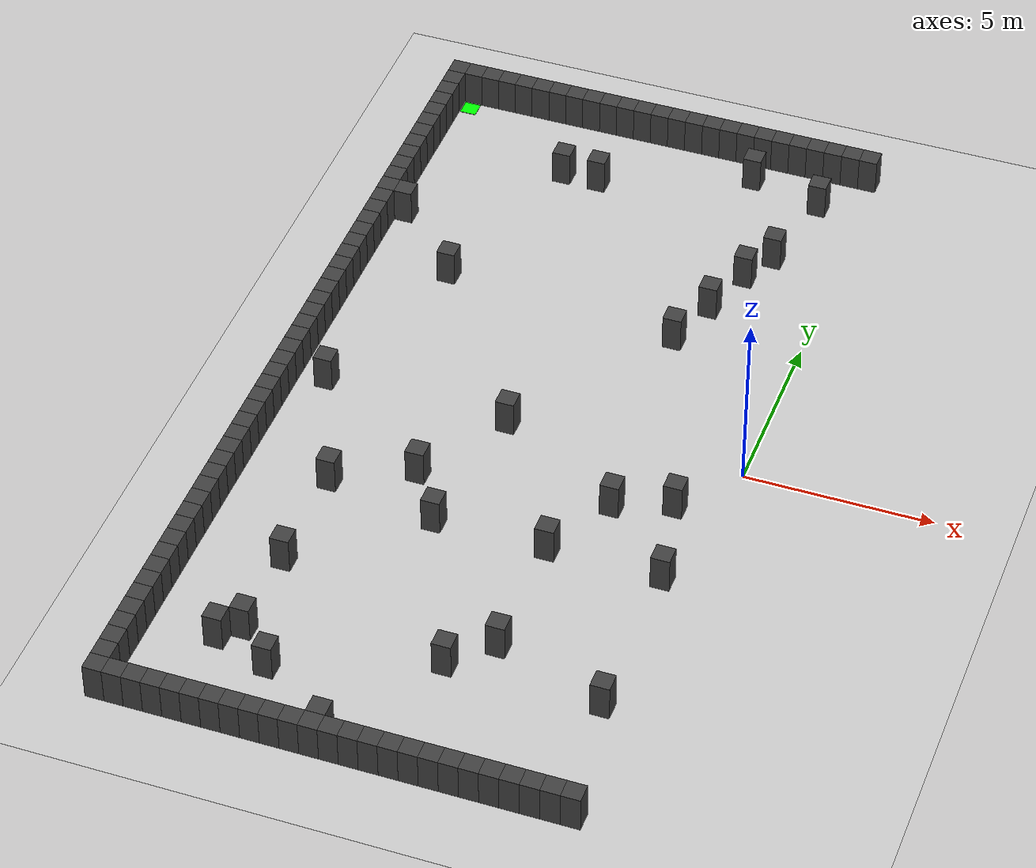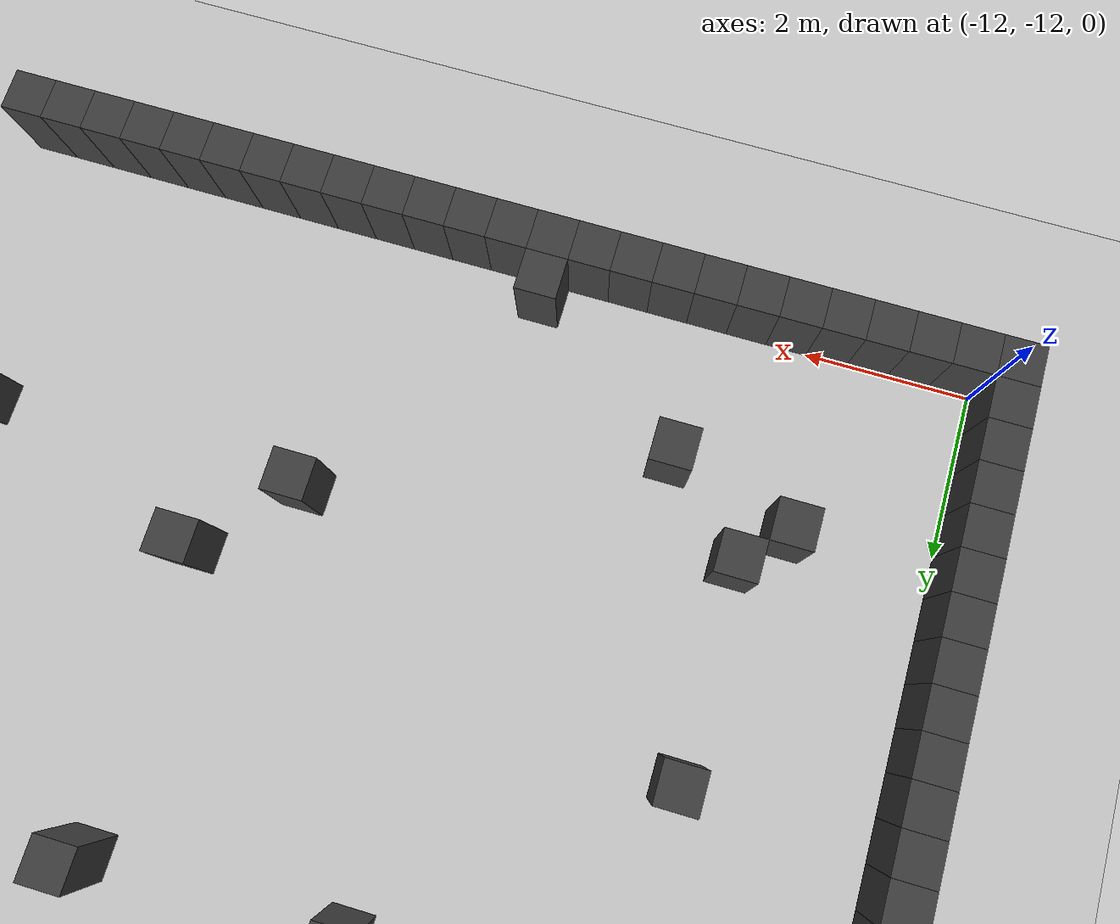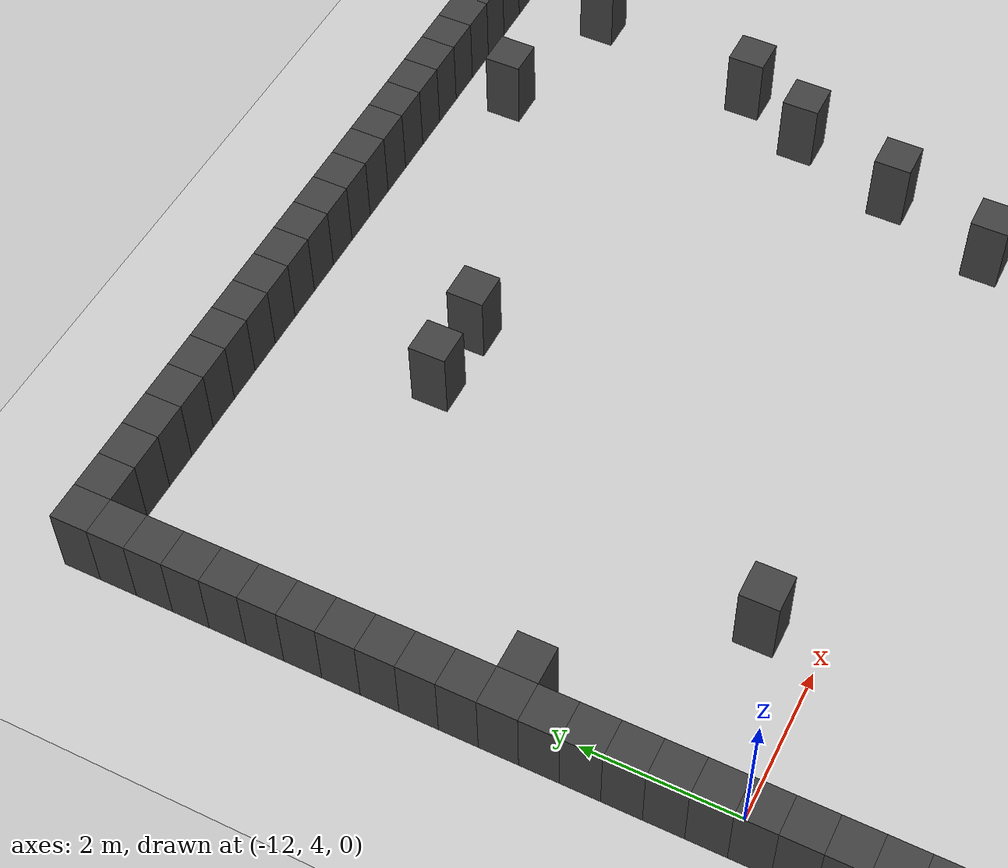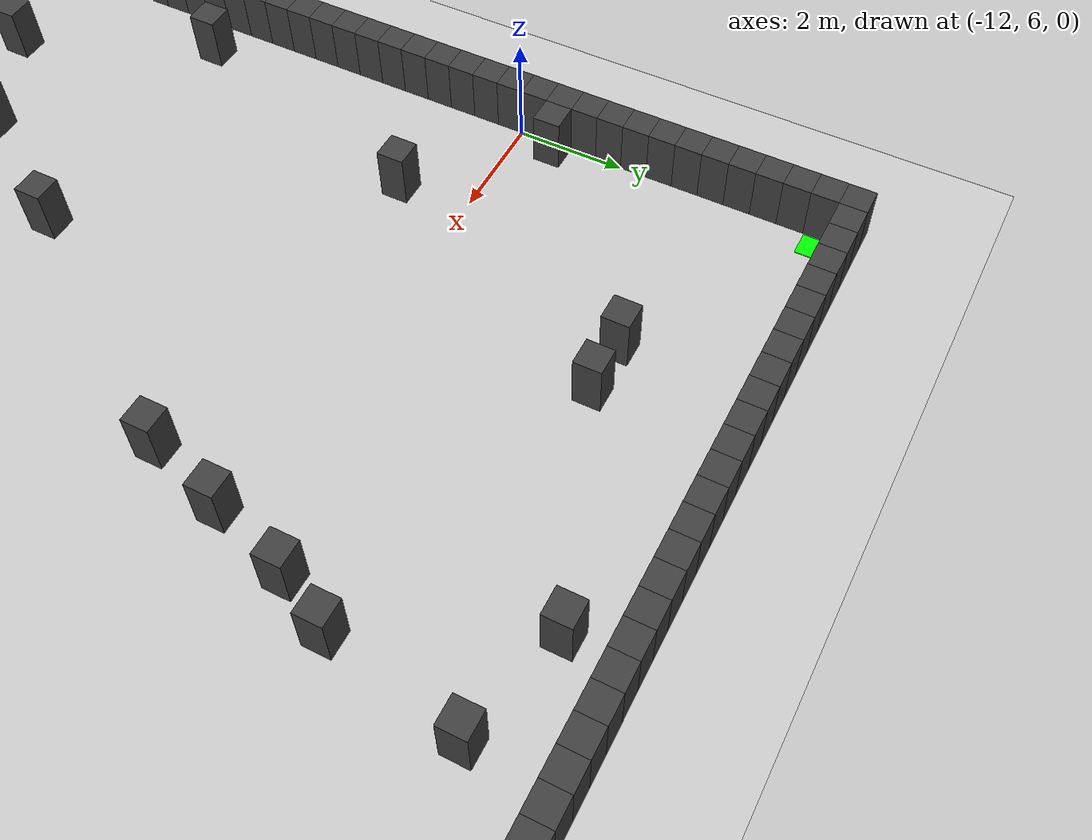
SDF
<sdf version="1.7">
 <world name="map_59">
  <model name="ground_plane">
   <static>true</static>
   <link name="link">
    <collision name="collision">
     <geometry><plane><normal>0 0 1</normal><size>200 200</size></plane></geometry>
    </collision>
    <visual name="visual">
     <geometry><plane><normal>0 0 1</normal><size>200 200</size></plane></geometry>
     <material><ambient>0.8 0.8 0.8 1</ambient><diffuse>0.8 0.8 0.8 1</diffuse></material>
    </visual>
   </link>
  </model>
  <model name="maze_environment">
   <static>true</static>
   <link name="wall_0">
    <pose>-12.250 12.250 0.500 0 0 0</pose>
    <collision name="col"><geometry><box><size>0.5 0.5 1.0</size></box></geometry></collision>
    <visual name="vis">
     <geometry><box><size>0.5 0.5 1.0</size></box></geometry>
     <material><ambient>0.15 0.15 0.15 1</ambient><diffuse>0.25 0.25 0.25 1</diffuse></material>
    </visual>
   </link>
   <link name="wall_1">
    <pose>-11.750 12.250 0.500 0 0 0</pose>
    <collision name="col"><geometry><box><size>0.5 0.5 1.0</size></box></geometry></collision>
    <visual name="vis">
     <geometry><box><size>0.5 0.5 1.0</size></box></geometry>
     <material><ambient>0.15 0.15 0.15 1</ambient><diffuse>0.25 0.25 0.25 1</diffuse></material>
    </visual>
   </link>
   <link name="wall_2">
    <pose>-11.250 12.250 0.500 0 0 0</pose>
    <collision name="col"><geometry><box><size>0.5 0.5 1.0</size></box></geometry></collision>
    <visual name="vis">
     <geometry><box><size>0.5 0.5 1.0</size></box></geometry>
     <material><ambient>0.15 0.15 0.15 1</ambient><diffuse>0.25 0.25 0.25 1</diffuse></material>
    </visual>
   </link>
   <link name="wall_3">
    <pose>-10.750 12.250 0.500 0 0 0</pose>
    <collision name="col"><geometry><box><size>0.5 0.5 1.0</size></box></geometry></collision>
    <visual name="vis">
     <geometry><box><size>0.5 0.5 1.0</size></box></geometry>
     <material><ambient>0.15 0.15 0.15 1</ambient><diffuse>0.25 0.25 0.25 1</diffuse></material>
    </visual>
   </link>
   <link name="wall_4">
    <pose>-10.250 12.250 0.500 0 0 0</pose>
    <collision name="col"><geometry><box><size>0.5 0.5 1.0</size></box></geometry></collision>
    <visual name="vis">
     <geometry><box><size>0.5 0.5 1.0</size></box></geometry>
     <material><ambient>0.15 0.15 0.15 1</ambient><diffuse>0.25 0.25 0.25 1</diffuse></material>
    </visual>
   </link>
   <link name="wall_5">
    <pose>-9.750 12.250 0.500 0 0 0</pose>
    <collision name="col"><geometry><box><size>0.5 0.5 1.0</size></box></geometry></collision>
    <visual name="vis">
     <geometry><box><size>0.5 0.5 1.0</size></box></geometry>
     <material><ambient>0.15 0.15 0.15 1</ambient><diffuse>0.25 0.25 0.25 1</diffuse></material>
    </visual>
   </link>
   <link name="wall_6">
    <pose>-9.250 12.250 0.500 0 0 0</pose>
    <collision name="col"><geometry><box><size>0.5 0.5 1.0</size></box></geometry></collision>
    <visual name="vis">
     <geometry><box><size>0.5 0.5 1.0</size></box></geometry>
     <material><ambient>0.15 0.15 0.15 1</ambient><diffuse>0.25 0.25 0.25 1</diffuse></material>
    </visual>
   </link>
   <link name="wall_7">
    <pose>-8.750 12.250 0.500 0 0 0</pose>
    <collision name="col"><geometry><box><size>0.5 0.5 1.0</size></box></geometry></collision>
    <visual name="vis">
     <geometry><box><size>0.5 0.5 1.0</size></box></geometry>
     <material><ambient>0.15 0.15 0.15 1</ambient><diffuse>0.25 0.25 0.25 1</diffuse></material>
    </visual>
   </link>
   <link name="wall_8">
    <pose>-8.250 12.250 0.500 0 0 0</pose>
    <collision name="col"><geometry><box><size>0.5 0.5 1.0</size></box></geometry></collision>
    <visual name="vis">
     <geometry><box><size>0.5 0.5 1.0</size></box></geometry>
     <material><ambient>0.15 0.15 0.15 1</ambient><diffuse>0.25 0.25 0.25 1</diffuse></material>
    </visual>
   </link>
   <link name="wall_9">
    <pose>-7.750 12.250 0.500 0 0 0</pose>
    <collision name="col"><geometry><box><size>0.5 0.5 1.0</size></box></geometry></collision>
    <visual name="vis">
     <geometry><box><size>0.5 0.5 1.0</size></box></geometry>
     <material><ambient>0.15 0.15 0.15 1</ambient><diffuse>0.25 0.25 0.25 1</diffuse></material>
    </visual>
   </link>
   <link name="wall_10">
    <pose>-7.250 12.250 0.500 0 0 0</pose>
    <collision name="col"><geometry><box><size>0.5 0.5 1.0</size></box></geometry></collision>
    <visual name="vis">
     <geometry><box><size>0.5 0.5 1.0</size></box></geometry>
     <material><ambient>0.15 0.15 0.15 1</ambient><diffuse>0.25 0.25 0.25 1</diffuse></material>
    </visual>
   </link>
   <link name="wall_11">
    <pose>-6.750 12.250 0.500 0 0 0</pose>
    <collision name="col"><geometry><box><size>0.5 0.5 1.0</size></box></geometry></collision>
    <visual name="vis">
     <geometry><box><size>0.5 0.5 1.0</size></box></geometry>
     <material><ambient>0.15 0.15 0.15 1</ambient><diffuse>0.25 0.25 0.25 1</diffuse></material>
    </visual>
   </link>
   <link name="wall_12">
    <pose>-6.250 12.250 0.500 0 0 0</pose>
    <collision name="col"><geometry><box><size>0.5 0.5 1.0</size></box></geometry></collision>
    <visual name="vis">
     <geometry><box><size>0.5 0.5 1.0</size></box></geometry>
     <material><ambient>0.15 0.15 0.15 1</ambient><diffuse>0.25 0.25 0.25 1</diffuse></material>
    </visual>
   </link>
   <link name="wall_13">
    <pose>-5.750 12.250 0.500 0 0 0</pose>
    <collision name="col"><geometry><box><size>0.5 0.5 1.0</size></box></geometry></collision>
    <visual name="vis">
     <geometry><box><size>0.5 0.5 1.0</size></box></geometry>
     <material><ambient>0.15 0.15 0.15 1</ambient><diffuse>0.25 0.25 0.25 1</diffuse></material>
    </visual>
   </link>
   <link name="wall_14">
    <pose>-5.250 12.250 0.500 0 0 0</pose>
    <collision name="col"><geometry><box><size>0.5 0.5 1.0</size></box></geometry></collision>
    <visual name="vis">
     <geometry><box><size>0.5 0.5 1.0</size></box></geometry>
     <material><ambient>0.15 0.15 0.15 1</ambient><diffuse>0.25 0.25 0.25 1</diffuse></material>
    </visual>
   </link>
   <link name="wall_15">
    <pose>-4.750 12.250 0.500 0 0 0</pose>
    <collision name="col"><geometry><box><size>0.5 0.5 1.0</size></box></geometry></collision>
    <visual name="vis">
     <geometry><box><size>0.5 0.5 1.0</size></box></geometry>
     <material><ambient>0.15 0.15 0.15 1</ambient><diffuse>0.25 0.25 0.25 1</diffuse></material>
    </visual>
   </link>
   <link name="wall_16">
    <pose>-4.250 12.250 0.500 0 0 0</pose>
    <collision name="col"><geometry><box><size>0.5 0.5 1.0</size></box></geometry></collision>
    <visual name="vis">
     <geometry><box><size>0.5 0.5 1.0</size></box></geometry>
     <material><ambient>0.15 0.15 0.15 1</ambient><diffuse>0.25 0.25 0.25 1</diffuse></material>
    </visual>
   </link>
   <link name="wall_17">
    <pose>-3.750 12.250 0.500 0 0 0</pose>
    <collision name="col"><geometry><box><size>0.5 0.5 1.0</size></box></geometry></collision>
    <visual name="vis">
     <geometry><box><size>0.5 0.5 1.0</size></box></geometry>
     <material><ambient>0.15 0.15 0.15 1</ambient><diffuse>0.25 0.25 0.25 1</diffuse></material>
    </visual>
   </link>
   <link name="wall_18">
    <pose>-3.250 12.250 0.500 0 0 0</pose>
    <collision name="col"><geometry><box><size>0.5 0.5 1.0</size></box></geometry></collision>
    <visual name="vis">
     <geometry><box><size>0.5 0.5 1.0</size></box></geometry>
     <material><ambient>0.15 0.15 0.15 1</ambient><diffuse>0.25 0.25 0.25 1</diffuse></material>
    </visual>
   </link>
   <link name="wall_19">
    <pose>-2.750 12.250 0.500 0 0 0</pose>
    <collision name="col"><geometry><box><size>0.5 0.5 1.0</size></box></geometry></collision>
    <visual name="vis">
     <geometry><box><size>0.5 0.5 1.0</size></box></geometry>
     <material><ambient>0.15 0.15 0.15 1</ambient><diffuse>0.25 0.25 0.25 1</diffuse></material>
    </visual>
   </link>
   <link name="wall_20">
    <pose>-2.250 12.250 0.500 0 0 0</pose>
    <collision name="col"><geometry><box><size>0.5 0.5 1.0</size></box></geometry></collision>
    <visual name="vis">
     <geometry><box><size>0.5 0.5 1.0</size></box></geometry>
     <material><ambient>0.15 0.15 0.15 1</ambient><diffuse>0.25 0.25 0.25 1</diffuse></material>
    </visual>
   </link>
   <link name="wall_21">
    <pose>-1.750 12.250 0.500 0 0 0</pose>
    <collision name="col"><geometry><box><size>0.5 0.5 1.0</size></box></geometry></collision>
    <visual name="vis">
     <geometry><box><size>0.5 0.5 1.0</size></box></geometry>
     <material><ambient>0.15 0.15 0.15 1</ambient><diffuse>0.25 0.25 0.25 1</diffuse></material>
    </visual>
   </link>
   <link name="wall_22">
    <pose>-1.250 12.250 0.500 0 0 0</pose>
    <collision name="col"><geometry><box><size>0.5 0.5 1.0</size></box></geometry></collision>
    <visual name="vis">
     <geometry><box><size>0.5 0.5 1.0</size></box></geometry>
     <material><ambient>0.15 0.15 0.15 1</ambient><diffuse>0.25 0.25 0.25 1</diffuse></material>
    </visual>
   </link>
   <link name="wall_23">
    <pose>-0.750 12.250 0.500 0 0 0</pose>
    <collision name="col"><geometry><box><size>0.5 0.5 1.0</size></box></geometry></collision>
    <visual name="vis">
     <geometry><box><size>0.5 0.5 1.0</size></box></geometry>
     <material><ambient>0.15 0.15 0.15 1</ambient><diffuse>0.25 0.25 0.25 1</diffuse></material>
    </visual>
   </link>
   <link name="wall_24">
    <pose>-0.250 12.250 0.500 0 0 0</pose>
    <collision name="col"><geometry><box><size>0.5 0.5 1.0</size></box></geometry></collision>
    <visual name="vis">
     <geometry><box><size>0.5 0.5 1.0</size></box></geometry>
     <material><ambient>0.15 0.15 0.15 1</ambient><diffuse>0.25 0.25 0.25 1</diffuse></material>
    </visual>
   </link>
   <link name="wall_50">
    <pose>-12.250 11.750 0.500 0 0 0</pose>
    <collision name="col"><geometry><box><size>0.5 0.5 1.0</size></box></geometry></collision>
    <visual name="vis">
     <geometry><box><size>0.5 0.5 1.0</size></box></geometry>
     <material><ambient>0.15 0.15 0.15 1</ambient><diffuse>0.25 0.25 0.25 1</diffuse></material>
    </visual>
   </link>
   <link name="wall_53">
    <pose>-12.250 11.250 0.500 0 0 0</pose>
    <collision name="col"><geometry><box><size>0.5 0.5 1.0</size></box></geometry></collision>
    <visual name="vis">
     <geometry><box><size>0.5 0.5 1.0</size></box></geometry>
     <material><ambient>0.15 0.15 0.15 1</ambient><diffuse>0.25 0.25 0.25 1</diffuse></material>
    </visual>
   </link>
   <link name="wall_54">
    <pose>-3.250 11.250 0.500 0 0 0</pose>
    <collision name="col"><geometry><box><size>0.5 0.5 1.0</size></box></geometry></collision>
    <visual name="vis">
     <geometry><box><size>0.5 0.5 1.0</size></box></geometry>
     <material><ambient>0.15 0.15 0.15 1</ambient><diffuse>0.25 0.25 0.25 1</diffuse></material>
    </visual>
   </link>
   <link name="wall_56">
    <pose>-12.250 10.750 0.500 0 0 0</pose>
    <collision name="col"><geometry><box><size>0.5 0.5 1.0</size></box></geometry></collision>
    <visual name="vis">
     <geometry><box><size>0.5 0.5 1.0</size></box></geometry>
     <material><ambient>0.15 0.15 0.15 1</ambient><diffuse>0.25 0.25 0.25 1</diffuse></material>
    </visual>
   </link>
   <link name="wall_57">
    <pose>-1.250 10.750 0.500 0 0 0</pose>
    <collision name="col"><geometry><box><size>0.5 0.5 1.0</size></box></geometry></collision>
    <visual name="vis">
     <geometry><box><size>0.5 0.5 1.0</size></box></geometry>
     <material><ambient>0.15 0.15 0.15 1</ambient><diffuse>0.25 0.25 0.25 1</diffuse></material>
    </visual>
   </link>
   <link name="wall_60">
    <pose>-12.250 10.250 0.500 0 0 0</pose>
    <collision name="col"><geometry><box><size>0.5 0.5 1.0</size></box></geometry></collision>
    <visual name="vis">
     <geometry><box><size>0.5 0.5 1.0</size></box></geometry>
     <material><ambient>0.15 0.15 0.15 1</ambient><diffuse>0.25 0.25 0.25 1</diffuse></material>
    </visual>
   </link>
   <link name="wall_63">
    <pose>-12.250 9.750 0.500 0 0 0</pose>
    <collision name="col"><geometry><box><size>0.5 0.5 1.0</size></box></geometry></collision>
    <visual name="vis">
     <geometry><box><size>0.5 0.5 1.0</size></box></geometry>
     <material><ambient>0.15 0.15 0.15 1</ambient><diffuse>0.25 0.25 0.25 1</diffuse></material>
    </visual>
   </link>
   <link name="wall_64">
    <pose>-8.250 9.750 0.500 0 0 0</pose>
    <collision name="col"><geometry><box><size>0.5 0.5 1.0</size></box></geometry></collision>
    <visual name="vis">
     <geometry><box><size>0.5 0.5 1.0</size></box></geometry>
     <material><ambient>0.15 0.15 0.15 1</ambient><diffuse>0.25 0.25 0.25 1</diffuse></material>
    </visual>
   </link>
   <link name="wall_65">
    <pose>-7.250 9.750 0.500 0 0 0</pose>
    <collision name="col"><geometry><box><size>0.5 0.5 1.0</size></box></geometry></collision>
    <visual name="vis">
     <geometry><box><size>0.5 0.5 1.0</size></box></geometry>
     <material><ambient>0.15 0.15 0.15 1</ambient><diffuse>0.25 0.25 0.25 1</diffuse></material>
    </visual>
   </link>
   <link name="wall_67">
    <pose>-12.250 9.250 0.500 0 0 0</pose>
    <collision name="col"><geometry><box><size>0.5 0.5 1.0</size></box></geometry></collision>
    <visual name="vis">
     <geometry><box><size>0.5 0.5 1.0</size></box></geometry>
     <material><ambient>0.15 0.15 0.15 1</ambient><diffuse>0.25 0.25 0.25 1</diffuse></material>
    </visual>
   </link>
   <link name="wall_69">
    <pose>-12.250 8.750 0.500 0 0 0</pose>
    <collision name="col"><geometry><box><size>0.5 0.5 1.0</size></box></geometry></collision>
    <visual name="vis">
     <geometry><box><size>0.5 0.5 1.0</size></box></geometry>
     <material><ambient>0.15 0.15 0.15 1</ambient><diffuse>0.25 0.25 0.25 1</diffuse></material>
    </visual>
   </link>
   <link name="wall_71">
    <pose>-12.250 8.250 0.500 0 0 0</pose>
    <collision name="col"><geometry><box><size>0.5 0.5 1.0</size></box></geometry></collision>
    <visual name="vis">
     <geometry><box><size>0.5 0.5 1.0</size></box></geometry>
     <material><ambient>0.15 0.15 0.15 1</ambient><diffuse>0.25 0.25 0.25 1</diffuse></material>
    </visual>
   </link>
   <link name="wall_72">
    <pose>-1.750 8.250 0.500 0 0 0</pose>
    <collision name="col"><geometry><box><size>0.5 0.5 1.0</size></box></geometry></collision>
    <visual name="vis">
     <geometry><box><size>0.5 0.5 1.0</size></box></geometry>
     <material><ambient>0.15 0.15 0.15 1</ambient><diffuse>0.25 0.25 0.25 1</diffuse></material>
    </visual>
   </link>
   <link name="wall_74">
    <pose>-12.250 7.750 0.500 0 0 0</pose>
    <collision name="col"><geometry><box><size>0.5 0.5 1.0</size></box></geometry></collision>
    <visual name="vis">
     <geometry><box><size>0.5 0.5 1.0</size></box></geometry>
     <material><ambient>0.15 0.15 0.15 1</ambient><diffuse>0.25 0.25 0.25 1</diffuse></material>
    </visual>
   </link>
   <link name="wall_76">
    <pose>-12.250 7.250 0.500 0 0 0</pose>
    <collision name="col"><geometry><box><size>0.5 0.5 1.0</size></box></geometry></collision>
    <visual name="vis">
     <geometry><box><size>0.5 0.5 1.0</size></box></geometry>
     <material><ambient>0.15 0.15 0.15 1</ambient><diffuse>0.25 0.25 0.25 1</diffuse></material>
    </visual>
   </link>
   <link name="wall_77">
    <pose>-2.250 7.250 0.500 0 0 0</pose>
    <collision name="col"><geometry><box><size>0.5 0.5 1.0</size></box></geometry></collision>
    <visual name="vis">
     <geometry><box><size>0.5 0.5 1.0</size></box></geometry>
     <material><ambient>0.15 0.15 0.15 1</ambient><diffuse>0.25 0.25 0.25 1</diffuse></material>
    </visual>
   </link>
   <link name="wall_79">
    <pose>-12.250 6.750 0.500 0 0 0</pose>
    <collision name="col"><geometry><box><size>0.5 0.5 1.0</size></box></geometry></collision>
    <visual name="vis">
     <geometry><box><size>0.5 0.5 1.0</size></box></geometry>
     <material><ambient>0.15 0.15 0.15 1</ambient><diffuse>0.25 0.25 0.25 1</diffuse></material>
    </visual>
   </link>
   <link name="wall_80">
    <pose>-11.750 6.750 0.500 0 0 0</pose>
    <collision name="col"><geometry><box><size>0.5 0.5 1.0</size></box></geometry></collision>
    <visual name="vis">
     <geometry><box><size>0.5 0.5 1.0</size></box></geometry>
     <material><ambient>0.15 0.15 0.15 1</ambient><diffuse>0.25 0.25 0.25 1</diffuse></material>
    </visual>
   </link>
   <link name="wall_82">
    <pose>-12.250 6.250 0.500 0 0 0</pose>
    <collision name="col"><geometry><box><size>0.5 0.5 1.0</size></box></geometry></collision>
    <visual name="vis">
     <geometry><box><size>0.5 0.5 1.0</size></box></geometry>
     <material><ambient>0.15 0.15 0.15 1</ambient><diffuse>0.25 0.25 0.25 1</diffuse></material>
    </visual>
   </link>
   <link name="wall_85">
    <pose>-12.250 5.750 0.500 0 0 0</pose>
    <collision name="col"><geometry><box><size>0.5 0.5 1.0</size></box></geometry></collision>
    <visual name="vis">
     <geometry><box><size>0.5 0.5 1.0</size></box></geometry>
     <material><ambient>0.15 0.15 0.15 1</ambient><diffuse>0.25 0.25 0.25 1</diffuse></material>
    </visual>
   </link>
   <link name="wall_86">
    <pose>-2.750 5.750 0.500 0 0 0</pose>
    <collision name="col"><geometry><box><size>0.5 0.5 1.0</size></box></geometry></collision>
    <visual name="vis">
     <geometry><box><size>0.5 0.5 1.0</size></box></geometry>
     <material><ambient>0.15 0.15 0.15 1</ambient><diffuse>0.25 0.25 0.25 1</diffuse></material>
    </visual>
   </link>
   <link name="wall_89">
    <pose>-12.250 5.250 0.500 0 0 0</pose>
    <collision name="col"><geometry><box><size>0.5 0.5 1.0</size></box></geometry></collision>
    <visual name="vis">
     <geometry><box><size>0.5 0.5 1.0</size></box></geometry>
     <material><ambient>0.15 0.15 0.15 1</ambient><diffuse>0.25 0.25 0.25 1</diffuse></material>
    </visual>
   </link>
   <link name="wall_92">
    <pose>-12.250 4.750 0.500 0 0 0</pose>
    <collision name="col"><geometry><box><size>0.5 0.5 1.0</size></box></geometry></collision>
    <visual name="vis">
     <geometry><box><size>0.5 0.5 1.0</size></box></geometry>
     <material><ambient>0.15 0.15 0.15 1</ambient><diffuse>0.25 0.25 0.25 1</diffuse></material>
    </visual>
   </link>
   <link name="wall_93">
    <pose>-9.750 4.750 0.500 0 0 0</pose>
    <collision name="col"><geometry><box><size>0.5 0.5 1.0</size></box></geometry></collision>
    <visual name="vis">
     <geometry><box><size>0.5 0.5 1.0</size></box></geometry>
     <material><ambient>0.15 0.15 0.15 1</ambient><diffuse>0.25 0.25 0.25 1</diffuse></material>
    </visual>
   </link>
   <link name="wall_95">
    <pose>-12.250 4.250 0.500 0 0 0</pose>
    <collision name="col"><geometry><box><size>0.5 0.5 1.0</size></box></geometry></collision>
    <visual name="vis">
     <geometry><box><size>0.5 0.5 1.0</size></box></geometry>
     <material><ambient>0.15 0.15 0.15 1</ambient><diffuse>0.25 0.25 0.25 1</diffuse></material>
    </visual>
   </link>
   <link name="wall_96">
    <pose>-3.250 4.250 0.500 0 0 0</pose>
    <collision name="col"><geometry><box><size>0.5 0.5 1.0</size></box></geometry></collision>
    <visual name="vis">
     <geometry><box><size>0.5 0.5 1.0</size></box></geometry>
     <material><ambient>0.15 0.15 0.15 1</ambient><diffuse>0.25 0.25 0.25 1</diffuse></material>
    </visual>
   </link>
   <link name="wall_99">
    <pose>-12.250 3.750 0.500 0 0 0</pose>
    <collision name="col"><geometry><box><size>0.5 0.5 1.0</size></box></geometry></collision>
    <visual name="vis">
     <geometry><box><size>0.5 0.5 1.0</size></box></geometry>
     <material><ambient>0.15 0.15 0.15 1</ambient><diffuse>0.25 0.25 0.25 1</diffuse></material>
    </visual>
   </link>
   <link name="wall_101">
    <pose>-12.250 3.250 0.500 0 0 0</pose>
    <collision name="col"><geometry><box><size>0.5 0.5 1.0</size></box></geometry></collision>
    <visual name="vis">
     <geometry><box><size>0.5 0.5 1.0</size></box></geometry>
     <material><ambient>0.15 0.15 0.15 1</ambient><diffuse>0.25 0.25 0.25 1</diffuse></material>
    </visual>
   </link>
   <link name="wall_104">
    <pose>-12.250 2.750 0.500 0 0 0</pose>
    <collision name="col"><geometry><box><size>0.5 0.5 1.0</size></box></geometry></collision>
    <visual name="vis">
     <geometry><box><size>0.5 0.5 1.0</size></box></geometry>
     <material><ambient>0.15 0.15 0.15 1</ambient><diffuse>0.25 0.25 0.25 1</diffuse></material>
    </visual>
   </link>
   <link name="wall_106">
    <pose>-12.250 2.250 0.500 0 0 0</pose>
    <collision name="col"><geometry><box><size>0.5 0.5 1.0</size></box></geometry></collision>
    <visual name="vis">
     <geometry><box><size>0.5 0.5 1.0</size></box></geometry>
     <material><ambient>0.15 0.15 0.15 1</ambient><diffuse>0.25 0.25 0.25 1</diffuse></material>
    </visual>
   </link>
   <link name="wall_108">
    <pose>-12.250 1.750 0.500 0 0 0</pose>
    <collision name="col"><geometry><box><size>0.5 0.5 1.0</size></box></geometry></collision>
    <visual name="vis">
     <geometry><box><size>0.5 0.5 1.0</size></box></geometry>
     <material><ambient>0.15 0.15 0.15 1</ambient><diffuse>0.25 0.25 0.25 1</diffuse></material>
    </visual>
   </link>
   <link name="wall_110">
    <pose>-12.250 1.250 0.500 0 0 0</pose>
    <collision name="col"><geometry><box><size>0.5 0.5 1.0</size></box></geometry></collision>
    <visual name="vis">
     <geometry><box><size>0.5 0.5 1.0</size></box></geometry>
     <material><ambient>0.15 0.15 0.15 1</ambient><diffuse>0.25 0.25 0.25 1</diffuse></material>
    </visual>
   </link>
   <link name="wall_114">
    <pose>-12.250 0.750 0.500 0 0 0</pose>
    <collision name="col"><geometry><box><size>0.5 0.5 1.0</size></box></geometry></collision>
    <visual name="vis">
     <geometry><box><size>0.5 0.5 1.0</size></box></geometry>
     <material><ambient>0.15 0.15 0.15 1</ambient><diffuse>0.25 0.25 0.25 1</diffuse></material>
    </visual>
   </link>
   <link name="wall_117">
    <pose>-12.250 0.250 0.500 0 0 0</pose>
    <collision name="col"><geometry><box><size>0.5 0.5 1.0</size></box></geometry></collision>
    <visual name="vis">
     <geometry><box><size>0.5 0.5 1.0</size></box></geometry>
     <material><ambient>0.15 0.15 0.15 1</ambient><diffuse>0.25 0.25 0.25 1</diffuse></material>
    </visual>
   </link>
   <link name="wall_119">
    <pose>-12.250 -0.250 0.500 0 0 0</pose>
    <collision name="col"><geometry><box><size>0.5 0.5 1.0</size></box></geometry></collision>
    <visual name="vis">
     <geometry><box><size>0.5 0.5 1.0</size></box></geometry>
     <material><ambient>0.15 0.15 0.15 1</ambient><diffuse>0.25 0.25 0.25 1</diffuse></material>
    </visual>
   </link>
   <link name="wall_120">
    <pose>-11.250 -0.250 0.500 0 0 0</pose>
    <collision name="col"><geometry><box><size>0.5 0.5 1.0</size></box></geometry></collision>
    <visual name="vis">
     <geometry><box><size>0.5 0.5 1.0</size></box></geometry>
     <material><ambient>0.15 0.15 0.15 1</ambient><diffuse>0.25 0.25 0.25 1</diffuse></material>
    </visual>
   </link>
   <link name="wall_121">
    <pose>-6.250 -0.250 0.500 0 0 0</pose>
    <collision name="col"><geometry><box><size>0.5 0.5 1.0</size></box></geometry></collision>
    <visual name="vis">
     <geometry><box><size>0.5 0.5 1.0</size></box></geometry>
     <material><ambient>0.15 0.15 0.15 1</ambient><diffuse>0.25 0.25 0.25 1</diffuse></material>
    </visual>
   </link>
   <link name="wall_124">
    <pose>-12.250 -0.750 0.500 0 0 0</pose>
    <collision name="col"><geometry><box><size>0.5 0.5 1.0</size></box></geometry></collision>
    <visual name="vis">
     <geometry><box><size>0.5 0.5 1.0</size></box></geometry>
     <material><ambient>0.15 0.15 0.15 1</ambient><diffuse>0.25 0.25 0.25 1</diffuse></material>
    </visual>
   </link>
   <link name="wall_126">
    <pose>-12.250 -1.250 0.500 0 0 0</pose>
    <collision name="col"><geometry><box><size>0.5 0.5 1.0</size></box></geometry></collision>
    <visual name="vis">
     <geometry><box><size>0.5 0.5 1.0</size></box></geometry>
     <material><ambient>0.15 0.15 0.15 1</ambient><diffuse>0.25 0.25 0.25 1</diffuse></material>
    </visual>
   </link>
   <link name="wall_128">
    <pose>-12.250 -1.750 0.500 0 0 0</pose>
    <collision name="col"><geometry><box><size>0.5 0.5 1.0</size></box></geometry></collision>
    <visual name="vis">
     <geometry><box><size>0.5 0.5 1.0</size></box></geometry>
     <material><ambient>0.15 0.15 0.15 1</ambient><diffuse>0.25 0.25 0.25 1</diffuse></material>
    </visual>
   </link>
   <link name="wall_129">
    <pose>-1.250 -1.750 0.500 0 0 0</pose>
    <collision name="col"><geometry><box><size>0.5 0.5 1.0</size></box></geometry></collision>
    <visual name="vis">
     <geometry><box><size>0.5 0.5 1.0</size></box></geometry>
     <material><ambient>0.15 0.15 0.15 1</ambient><diffuse>0.25 0.25 0.25 1</diffuse></material>
    </visual>
   </link>
   <link name="wall_132">
    <pose>-12.250 -2.250 0.500 0 0 0</pose>
    <collision name="col"><geometry><box><size>0.5 0.5 1.0</size></box></geometry></collision>
    <visual name="vis">
     <geometry><box><size>0.5 0.5 1.0</size></box></geometry>
     <material><ambient>0.15 0.15 0.15 1</ambient><diffuse>0.25 0.25 0.25 1</diffuse></material>
    </visual>
   </link>
   <link name="wall_133">
    <pose>-2.750 -2.250 0.500 0 0 0</pose>
    <collision name="col"><geometry><box><size>0.5 0.5 1.0</size></box></geometry></collision>
    <visual name="vis">
     <geometry><box><size>0.5 0.5 1.0</size></box></geometry>
     <material><ambient>0.15 0.15 0.15 1</ambient><diffuse>0.25 0.25 0.25 1</diffuse></material>
    </visual>
   </link>
   <link name="wall_135">
    <pose>-12.250 -2.750 0.500 0 0 0</pose>
    <collision name="col"><geometry><box><size>0.5 0.5 1.0</size></box></geometry></collision>
    <visual name="vis">
     <geometry><box><size>0.5 0.5 1.0</size></box></geometry>
     <material><ambient>0.15 0.15 0.15 1</ambient><diffuse>0.25 0.25 0.25 1</diffuse></material>
    </visual>
   </link>
   <link name="wall_136">
    <pose>-7.750 -2.750 0.500 0 0 0</pose>
    <collision name="col"><geometry><box><size>0.5 0.5 1.0</size></box></geometry></collision>
    <visual name="vis">
     <geometry><box><size>0.5 0.5 1.0</size></box></geometry>
     <material><ambient>0.15 0.15 0.15 1</ambient><diffuse>0.25 0.25 0.25 1</diffuse></material>
    </visual>
   </link>
   <link name="wall_138">
    <pose>-12.250 -3.250 0.500 0 0 0</pose>
    <collision name="col"><geometry><box><size>0.5 0.5 1.0</size></box></geometry></collision>
    <visual name="vis">
     <geometry><box><size>0.5 0.5 1.0</size></box></geometry>
     <material><ambient>0.15 0.15 0.15 1</ambient><diffuse>0.25 0.25 0.25 1</diffuse></material>
    </visual>
   </link>
   <link name="wall_141">
    <pose>-12.250 -3.750 0.500 0 0 0</pose>
    <collision name="col"><geometry><box><size>0.5 0.5 1.0</size></box></geometry></collision>
    <visual name="vis">
     <geometry><box><size>0.5 0.5 1.0</size></box></geometry>
     <material><ambient>0.15 0.15 0.15 1</ambient><diffuse>0.25 0.25 0.25 1</diffuse></material>
    </visual>
   </link>
   <link name="wall_142">
    <pose>-9.750 -3.750 0.500 0 0 0</pose>
    <collision name="col"><geometry><box><size>0.5 0.5 1.0</size></box></geometry></collision>
    <visual name="vis">
     <geometry><box><size>0.5 0.5 1.0</size></box></geometry>
     <material><ambient>0.15 0.15 0.15 1</ambient><diffuse>0.25 0.25 0.25 1</diffuse></material>
    </visual>
   </link>
   <link name="wall_144">
    <pose>-12.250 -4.250 0.500 0 0 0</pose>
    <collision name="col"><geometry><box><size>0.5 0.5 1.0</size></box></geometry></collision>
    <visual name="vis">
     <geometry><box><size>0.5 0.5 1.0</size></box></geometry>
     <material><ambient>0.15 0.15 0.15 1</ambient><diffuse>0.25 0.25 0.25 1</diffuse></material>
    </visual>
   </link>
   <link name="wall_145">
    <pose>-6.750 -4.250 0.500 0 0 0</pose>
    <collision name="col"><geometry><box><size>0.5 0.5 1.0</size></box></geometry></collision>
    <visual name="vis">
     <geometry><box><size>0.5 0.5 1.0</size></box></geometry>
     <material><ambient>0.15 0.15 0.15 1</ambient><diffuse>0.25 0.25 0.25 1</diffuse></material>
    </visual>
   </link>
   <link name="wall_146">
    <pose>-3.750 -4.250 0.500 0 0 0</pose>
    <collision name="col"><geometry><box><size>0.5 0.5 1.0</size></box></geometry></collision>
    <visual name="vis">
     <geometry><box><size>0.5 0.5 1.0</size></box></geometry>
     <material><ambient>0.15 0.15 0.15 1</ambient><diffuse>0.25 0.25 0.25 1</diffuse></material>
    </visual>
   </link>
   <link name="wall_147">
    <pose>-0.750 -4.250 0.500 0 0 0</pose>
    <collision name="col"><geometry><box><size>0.5 0.5 1.0</size></box></geometry></collision>
    <visual name="vis">
     <geometry><box><size>0.5 0.5 1.0</size></box></geometry>
     <material><ambient>0.15 0.15 0.15 1</ambient><diffuse>0.25 0.25 0.25 1</diffuse></material>
    </visual>
   </link>
   <link name="wall_149">
    <pose>-12.250 -4.750 0.500 0 0 0</pose>
    <collision name="col"><geometry><box><size>0.5 0.5 1.0</size></box></geometry></collision>
    <visual name="vis">
     <geometry><box><size>0.5 0.5 1.0</size></box></geometry>
     <material><ambient>0.15 0.15 0.15 1</ambient><diffuse>0.25 0.25 0.25 1</diffuse></material>
    </visual>
   </link>
   <link name="wall_152">
    <pose>-12.250 -5.250 0.500 0 0 0</pose>
    <collision name="col"><geometry><box><size>0.5 0.5 1.0</size></box></geometry></collision>
    <visual name="vis">
     <geometry><box><size>0.5 0.5 1.0</size></box></geometry>
     <material><ambient>0.15 0.15 0.15 1</ambient><diffuse>0.25 0.25 0.25 1</diffuse></material>
    </visual>
   </link>
   <link name="wall_154">
    <pose>-12.250 -5.750 0.500 0 0 0</pose>
    <collision name="col"><geometry><box><size>0.5 0.5 1.0</size></box></geometry></collision>
    <visual name="vis">
     <geometry><box><size>0.5 0.5 1.0</size></box></geometry>
     <material><ambient>0.15 0.15 0.15 1</ambient><diffuse>0.25 0.25 0.25 1</diffuse></material>
    </visual>
   </link>
   <link name="wall_157">
    <pose>-12.250 -6.250 0.500 0 0 0</pose>
    <collision name="col"><geometry><box><size>0.5 0.5 1.0</size></box></geometry></collision>
    <visual name="vis">
     <geometry><box><size>0.5 0.5 1.0</size></box></geometry>
     <material><ambient>0.15 0.15 0.15 1</ambient><diffuse>0.25 0.25 0.25 1</diffuse></material>
    </visual>
   </link>
   <link name="wall_160">
    <pose>-12.250 -6.750 0.500 0 0 0</pose>
    <collision name="col"><geometry><box><size>0.5 0.5 1.0</size></box></geometry></collision>
    <visual name="vis">
     <geometry><box><size>0.5 0.5 1.0</size></box></geometry>
     <material><ambient>0.15 0.15 0.15 1</ambient><diffuse>0.25 0.25 0.25 1</diffuse></material>
    </visual>
   </link>
   <link name="wall_161">
    <pose>-9.750 -6.750 0.500 0 0 0</pose>
    <collision name="col"><geometry><box><size>0.5 0.5 1.0</size></box></geometry></collision>
    <visual name="vis">
     <geometry><box><size>0.5 0.5 1.0</size></box></geometry>
     <material><ambient>0.15 0.15 0.15 1</ambient><diffuse>0.25 0.25 0.25 1</diffuse></material>
    </visual>
   </link>
   <link name="wall_163">
    <pose>-12.250 -7.250 0.500 0 0 0</pose>
    <collision name="col"><geometry><box><size>0.5 0.5 1.0</size></box></geometry></collision>
    <visual name="vis">
     <geometry><box><size>0.5 0.5 1.0</size></box></geometry>
     <material><ambient>0.15 0.15 0.15 1</ambient><diffuse>0.25 0.25 0.25 1</diffuse></material>
    </visual>
   </link>
   <link name="wall_167">
    <pose>-12.250 -7.750 0.500 0 0 0</pose>
    <collision name="col"><geometry><box><size>0.5 0.5 1.0</size></box></geometry></collision>
    <visual name="vis">
     <geometry><box><size>0.5 0.5 1.0</size></box></geometry>
     <material><ambient>0.15 0.15 0.15 1</ambient><diffuse>0.25 0.25 0.25 1</diffuse></material>
    </visual>
   </link>
   <link name="wall_168">
    <pose>-3.750 -7.750 0.500 0 0 0</pose>
    <collision name="col"><geometry><box><size>0.5 0.5 1.0</size></box></geometry></collision>
    <visual name="vis">
     <geometry><box><size>0.5 0.5 1.0</size></box></geometry>
     <material><ambient>0.15 0.15 0.15 1</ambient><diffuse>0.25 0.25 0.25 1</diffuse></material>
    </visual>
   </link>
   <link name="wall_172">
    <pose>-12.250 -8.250 0.500 0 0 0</pose>
    <collision name="col"><geometry><box><size>0.5 0.5 1.0</size></box></geometry></collision>
    <visual name="vis">
     <geometry><box><size>0.5 0.5 1.0</size></box></geometry>
     <material><ambient>0.15 0.15 0.15 1</ambient><diffuse>0.25 0.25 0.25 1</diffuse></material>
    </visual>
   </link>
   <link name="wall_175">
    <pose>-12.250 -8.750 0.500 0 0 0</pose>
    <collision name="col"><geometry><box><size>0.5 0.5 1.0</size></box></geometry></collision>
    <visual name="vis">
     <geometry><box><size>0.5 0.5 1.0</size></box></geometry>
     <material><ambient>0.15 0.15 0.15 1</ambient><diffuse>0.25 0.25 0.25 1</diffuse></material>
    </visual>
   </link>
   <link name="wall_176">
    <pose>-4.750 -8.750 0.500 0 0 0</pose>
    <collision name="col"><geometry><box><size>0.5 0.5 1.0</size></box></geometry></collision>
    <visual name="vis">
     <geometry><box><size>0.5 0.5 1.0</size></box></geometry>
     <material><ambient>0.15 0.15 0.15 1</ambient><diffuse>0.25 0.25 0.25 1</diffuse></material>
    </visual>
   </link>
   <link name="wall_177">
    <pose>-0.750 -8.750 0.500 0 0 0</pose>
    <collision name="col"><geometry><box><size>0.5 0.5 1.0</size></box></geometry></collision>
    <visual name="vis">
     <geometry><box><size>0.5 0.5 1.0</size></box></geometry>
     <material><ambient>0.15 0.15 0.15 1</ambient><diffuse>0.25 0.25 0.25 1</diffuse></material>
    </visual>
   </link>
   <link name="wall_182">
    <pose>-12.250 -9.250 0.500 0 0 0</pose>
    <collision name="col"><geometry><box><size>0.5 0.5 1.0</size></box></geometry></collision>
    <visual name="vis">
     <geometry><box><size>0.5 0.5 1.0</size></box></geometry>
     <material><ambient>0.15 0.15 0.15 1</ambient><diffuse>0.25 0.25 0.25 1</diffuse></material>
    </visual>
   </link>
   <link name="wall_183">
    <pose>-9.750 -9.250 0.500 0 0 0</pose>
    <collision name="col"><geometry><box><size>0.5 0.5 1.0</size></box></geometry></collision>
    <visual name="vis">
     <geometry><box><size>0.5 0.5 1.0</size></box></geometry>
     <material><ambient>0.15 0.15 0.15 1</ambient><diffuse>0.25 0.25 0.25 1</diffuse></material>
    </visual>
   </link>
   <link name="wall_186">
    <pose>-12.250 -9.750 0.500 0 0 0</pose>
    <collision name="col"><geometry><box><size>0.5 0.5 1.0</size></box></geometry></collision>
    <visual name="vis">
     <geometry><box><size>0.5 0.5 1.0</size></box></geometry>
     <material><ambient>0.15 0.15 0.15 1</ambient><diffuse>0.25 0.25 0.25 1</diffuse></material>
    </visual>
   </link>
   <link name="wall_187">
    <pose>-10.250 -9.750 0.500 0 0 0</pose>
    <collision name="col"><geometry><box><size>0.5 0.5 1.0</size></box></geometry></collision>
    <visual name="vis">
     <geometry><box><size>0.5 0.5 1.0</size></box></geometry>
     <material><ambient>0.15 0.15 0.15 1</ambient><diffuse>0.25 0.25 0.25 1</diffuse></material>
    </visual>
   </link>
   <link name="wall_189">
    <pose>-12.250 -10.250 0.500 0 0 0</pose>
    <collision name="col"><geometry><box><size>0.5 0.5 1.0</size></box></geometry></collision>
    <visual name="vis">
     <geometry><box><size>0.5 0.5 1.0</size></box></geometry>
     <material><ambient>0.15 0.15 0.15 1</ambient><diffuse>0.25 0.25 0.25 1</diffuse></material>
    </visual>
   </link>
   <link name="wall_190">
    <pose>-8.750 -10.250 0.500 0 0 0</pose>
    <collision name="col"><geometry><box><size>0.5 0.5 1.0</size></box></geometry></collision>
    <visual name="vis">
     <geometry><box><size>0.5 0.5 1.0</size></box></geometry>
     <material><ambient>0.15 0.15 0.15 1</ambient><diffuse>0.25 0.25 0.25 1</diffuse></material>
    </visual>
   </link>
   <link name="wall_192">
    <pose>-12.250 -10.750 0.500 0 0 0</pose>
    <collision name="col"><geometry><box><size>0.5 0.5 1.0</size></box></geometry></collision>
    <visual name="vis">
     <geometry><box><size>0.5 0.5 1.0</size></box></geometry>
     <material><ambient>0.15 0.15 0.15 1</ambient><diffuse>0.25 0.25 0.25 1</diffuse></material>
    </visual>
   </link>
   <link name="wall_194">
    <pose>-12.250 -11.250 0.500 0 0 0</pose>
    <collision name="col"><geometry><box><size>0.5 0.5 1.0</size></box></geometry></collision>
    <visual name="vis">
     <geometry><box><size>0.5 0.5 1.0</size></box></geometry>
     <material><ambient>0.15 0.15 0.15 1</ambient><diffuse>0.25 0.25 0.25 1</diffuse></material>
    </visual>
   </link>
   <link name="wall_197">
    <pose>-12.250 -11.750 0.500 0 0 0</pose>
    <collision name="col"><geometry><box><size>0.5 0.5 1.0</size></box></geometry></collision>
    <visual name="vis">
     <geometry><box><size>0.5 0.5 1.0</size></box></geometry>
     <material><ambient>0.15 0.15 0.15 1</ambient><diffuse>0.25 0.25 0.25 1</diffuse></material>
    </visual>
   </link>
   <link name="wall_198">
    <pose>-6.750 -11.750 0.500 0 0 0</pose>
    <collision name="col"><geometry><box><size>0.5 0.5 1.0</size></box></geometry></collision>
    <visual name="vis">
     <geometry><box><size>0.5 0.5 1.0</size></box></geometry>
     <material><ambient>0.15 0.15 0.15 1</ambient><diffuse>0.25 0.25 0.25 1</diffuse></material>
    </visual>
   </link>
   <link name="wall_201">
    <pose>-12.250 -12.250 0.500 0 0 0</pose>
    <collision name="col"><geometry><box><size>0.5 0.5 1.0</size></box></geometry></collision>
    <visual name="vis">
     <geometry><box><size>0.5 0.5 1.0</size></box></geometry>
     <material><ambient>0.15 0.15 0.15 1</ambient><diffuse>0.25 0.25 0.25 1</diffuse></material>
    </visual>
   </link>
   <link name="wall_202">
    <pose>-11.750 -12.250 0.500 0 0 0</pose>
    <collision name="col"><geometry><box><size>0.5 0.5 1.0</size></box></geometry></collision>
    <visual name="vis">
     <geometry><box><size>0.5 0.5 1.0</size></box></geometry>
     <material><ambient>0.15 0.15 0.15 1</ambient><diffuse>0.25 0.25 0.25 1</diffuse></material>
    </visual>
   </link>
   <link name="wall_203">
    <pose>-11.250 -12.250 0.500 0 0 0</pose>
    <collision name="col"><geometry><box><size>0.5 0.5 1.0</size></box></geometry></collision>
    <visual name="vis">
     <geometry><box><size>0.5 0.5 1.0</size></box></geometry>
     <material><ambient>0.15 0.15 0.15 1</ambient><diffuse>0.25 0.25 0.25 1</diffuse></material>
    </visual>
   </link>
   <link name="wall_204">
    <pose>-10.750 -12.250 0.500 0 0 0</pose>
    <collision name="col"><geometry><box><size>0.5 0.5 1.0</size></box></geometry></collision>
    <visual name="vis">
     <geometry><box><size>0.5 0.5 1.0</size></box></geometry>
     <material><ambient>0.15 0.15 0.15 1</ambient><diffuse>0.25 0.25 0.25 1</diffuse></material>
    </visual>
   </link>
   <link name="wall_205">
    <pose>-10.250 -12.250 0.500 0 0 0</pose>
    <collision name="col"><geometry><box><size>0.5 0.5 1.0</size></box></geometry></collision>
    <visual name="vis">
     <geometry><box><size>0.5 0.5 1.0</size></box></geometry>
     <material><ambient>0.15 0.15 0.15 1</ambient><diffuse>0.25 0.25 0.25 1</diffuse></material>
    </visual>
   </link>
   <link name="wall_206">
    <pose>-9.750 -12.250 0.500 0 0 0</pose>
    <collision name="col"><geometry><box><size>0.5 0.5 1.0</size></box></geometry></collision>
    <visual name="vis">
     <geometry><box><size>0.5 0.5 1.0</size></box></geometry>
     <material><ambient>0.15 0.15 0.15 1</ambient><diffuse>0.25 0.25 0.25 1</diffuse></material>
    </visual>
   </link>
   <link name="wall_207">
    <pose>-9.250 -12.250 0.500 0 0 0</pose>
    <collision name="col"><geometry><box><size>0.5 0.5 1.0</size></box></geometry></collision>
    <visual name="vis">
     <geometry><box><size>0.5 0.5 1.0</size></box></geometry>
     <material><ambient>0.15 0.15 0.15 1</ambient><diffuse>0.25 0.25 0.25 1</diffuse></material>
    </visual>
   </link>
   <link name="wall_208">
    <pose>-8.750 -12.250 0.500 0 0 0</pose>
    <collision name="col"><geometry><box><size>0.5 0.5 1.0</size></box></geometry></collision>
    <visual name="vis">
     <geometry><box><size>0.5 0.5 1.0</size></box></geometry>
     <material><ambient>0.15 0.15 0.15 1</ambient><diffuse>0.25 0.25 0.25 1</diffuse></material>
    </visual>
   </link>
   <link name="wall_209">
    <pose>-8.250 -12.250 0.500 0 0 0</pose>
    <collision name="col"><geometry><box><size>0.5 0.5 1.0</size></box></geometry></collision>
    <visual name="vis">
     <geometry><box><size>0.5 0.5 1.0</size></box></geometry>
     <material><ambient>0.15 0.15 0.15 1</ambient><diffuse>0.25 0.25 0.25 1</diffuse></material>
    </visual>
   </link>
   <link name="wall_210">
    <pose>-7.750 -12.250 0.500 0 0 0</pose>
    <collision name="col"><geometry><box><size>0.5 0.5 1.0</size></box></geometry></collision>
    <visual name="vis">
     <geometry><box><size>0.5 0.5 1.0</size></box></geometry>
     <material><ambient>0.15 0.15 0.15 1</ambient><diffuse>0.25 0.25 0.25 1</diffuse></material>
    </visual>
   </link>
   <link name="wall_211">
    <pose>-7.250 -12.250 0.500 0 0 0</pose>
    <collision name="col"><geometry><box><size>0.5 0.5 1.0</size></box></geometry></collision>
    <visual name="vis">
     <geometry><box><size>0.5 0.5 1.0</size></box></geometry>
     <material><ambient>0.15 0.15 0.15 1</ambient><diffuse>0.25 0.25 0.25 1</diffuse></material>
    </visual>
   </link>
   <link name="wall_212">
    <pose>-6.750 -12.250 0.500 0 0 0</pose>
    <collision name="col"><geometry><box><size>0.5 0.5 1.0</size></box></geometry></collision>
    <visual name="vis">
     <geometry><box><size>0.5 0.5 1.0</size></box></geometry>
     <material><ambient>0.15 0.15 0.15 1</ambient><diffuse>0.25 0.25 0.25 1</diffuse></material>
    </visual>
   </link>
   <link name="wall_213">
    <pose>-6.250 -12.250 0.500 0 0 0</pose>
    <collision name="col"><geometry><box><size>0.5 0.5 1.0</size></box></geometry></collision>
    <visual name="vis">
     <geometry><box><size>0.5 0.5 1.0</size></box></geometry>
     <material><ambient>0.15 0.15 0.15 1</ambient><diffuse>0.25 0.25 0.25 1</diffuse></material>
    </visual>
   </link>
   <link name="wall_214">
    <pose>-5.750 -12.250 0.500 0 0 0</pose>
    <collision name="col"><geometry><box><size>0.5 0.5 1.0</size></box></geometry></collision>
    <visual name="vis">
     <geometry><box><size>0.5 0.5 1.0</size></box></geometry>
     <material><ambient>0.15 0.15 0.15 1</ambient><diffuse>0.25 0.25 0.25 1</diffuse></material>
    </visual>
   </link>
   <link name="wall_215">
    <pose>-5.250 -12.250 0.500 0 0 0</pose>
    <collision name="col"><geometry><box><size>0.5 0.5 1.0</size></box></geometry></collision>
    <visual name="vis">
     <geometry><box><size>0.5 0.5 1.0</size></box></geometry>
     <material><ambient>0.15 0.15 0.15 1</ambient><diffuse>0.25 0.25 0.25 1</diffuse></material>
    </visual>
   </link>
   <link name="wall_216">
    <pose>-4.750 -12.250 0.500 0 0 0</pose>
    <collision name="col"><geometry><box><size>0.5 0.5 1.0</size></box></geometry></collision>
    <visual name="vis">
     <geometry><box><size>0.5 0.5 1.0</size></box></geometry>
     <material><ambient>0.15 0.15 0.15 1</ambient><diffuse>0.25 0.25 0.25 1</diffuse></material>
    </visual>
   </link>
   <link name="wall_217">
    <pose>-4.250 -12.250 0.500 0 0 0</pose>
    <collision name="col"><geometry><box><size>0.5 0.5 1.0</size></box></geometry></collision>
    <visual name="vis">
     <geometry><box><size>0.5 0.5 1.0</size></box></geometry>
     <material><ambient>0.15 0.15 0.15 1</ambient><diffuse>0.25 0.25 0.25 1</diffuse></material>
    </visual>
   </link>
   <link name="wall_218">
    <pose>-3.750 -12.250 0.500 0 0 0</pose>
    <collision name="col"><geometry><box><size>0.5 0.5 1.0</size></box></geometry></collision>
    <visual name="vis">
     <geometry><box><size>0.5 0.5 1.0</size></box></geometry>
     <material><ambient>0.15 0.15 0.15 1</ambient><diffuse>0.25 0.25 0.25 1</diffuse></material>
    </visual>
   </link>
   <link name="wall_219">
    <pose>-3.250 -12.250 0.500 0 0 0</pose>
    <collision name="col"><geometry><box><size>0.5 0.5 1.0</size></box></geometry></collision>
    <visual name="vis">
     <geometry><box><size>0.5 0.5 1.0</size></box></geometry>
     <material><ambient>0.15 0.15 0.15 1</ambient><diffuse>0.25 0.25 0.25 1</diffuse></material>
    </visual>
   </link>
   <link name="wall_220">
    <pose>-2.750 -12.250 0.500 0 0 0</pose>
    <collision name="col"><geometry><box><size>0.5 0.5 1.0</size></box></geometry></collision>
    <visual name="vis">
     <geometry><box><size>0.5 0.5 1.0</size></box></geometry>
     <material><ambient>0.15 0.15 0.15 1</ambient><diffuse>0.25 0.25 0.25 1</diffuse></material>
    </visual>
   </link>
   <link name="wall_221">
    <pose>-2.250 -12.250 0.500 0 0 0</pose>
    <collision name="col"><geometry><box><size>0.5 0.5 1.0</size></box></geometry></collision>
    <visual name="vis">
     <geometry><box><size>0.5 0.5 1.0</size></box></geometry>
     <material><ambient>0.15 0.15 0.15 1</ambient><diffuse>0.25 0.25 0.25 1</diffuse></material>
    </visual>
   </link>
   <link name="wall_222">
    <pose>-1.750 -12.250 0.500 0 0 0</pose>
    <collision name="col"><geometry><box><size>0.5 0.5 1.0</size></box></geometry></collision>
    <visual name="vis">
     <geometry><box><size>0.5 0.5 1.0</size></box></geometry>
     <material><ambient>0.15 0.15 0.15 1</ambient><diffuse>0.25 0.25 0.25 1</diffuse></material>
    </visual>
   </link>
   <link name="wall_223">
    <pose>-1.250 -12.250 0.500 0 0 0</pose>
    <collision name="col"><geometry><box><size>0.5 0.5 1.0</size></box></geometry></collision>
    <visual name="vis">
     <geometry><box><size>0.5 0.5 1.0</size></box></geometry>
     <material><ambient>0.15 0.15 0.15 1</ambient><diffuse>0.25 0.25 0.25 1</diffuse></material>
    </visual>
   </link>
   <link name="wall_224">
    <pose>-0.750 -12.250 0.500 0 0 0</pose>
    <collision name="col"><geometry><box><size>0.5 0.5 1.0</size></box></geometry></collision>
    <visual name="vis">
     <geometry><box><size>0.5 0.5 1.0</size></box></geometry>
     <material><ambient>0.15 0.15 0.15 1</ambient><diffuse>0.25 0.25 0.25 1</diffuse></material>
    </visual>
   </link>
   <link name="wall_225">
    <pose>-0.250 -12.250 0.500 0 0 0</pose>
    <collision name="col"><geometry><box><size>0.5 0.5 1.0</size></box></geometry></collision>
    <visual name="vis">
     <geometry><box><size>0.5 0.5 1.0</size></box></geometry>
     <material><ambient>0.15 0.15 0.15 1</ambient><diffuse>0.25 0.25 0.25 1</diffuse></material>
    </visual>
   </link>
   <link name="start_zone">
    <pose>-11.750 11.750 0.005 0 0 0</pose>
    <visual name="vis">
     <geometry><box><size>0.45 0.45 0.01</size></box></geometry>
     <material>
      <ambient>0.0 1.0 0.0 1</ambient>
      <diffuse>0.0 1.0 0.0 1</diffuse>
      <emissive>0.00 0.60 0.00 1</emissive>
     </material>
    </visual>
   </link>
  </model>
 </world>
</sdf>
